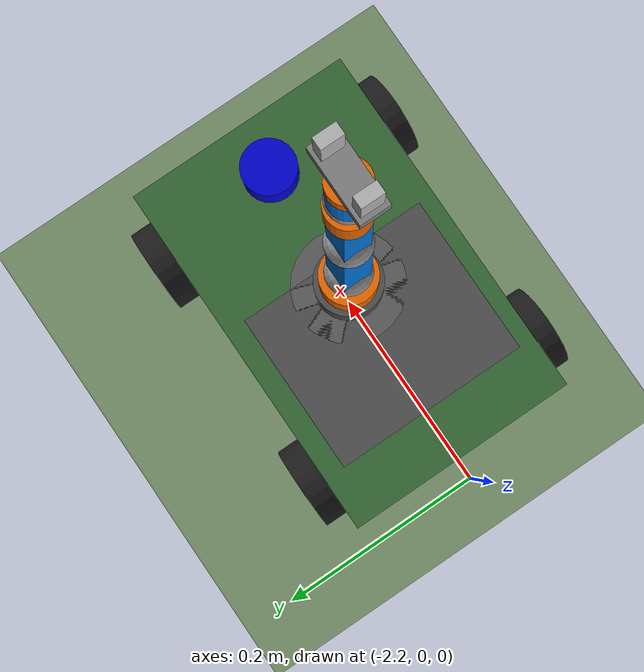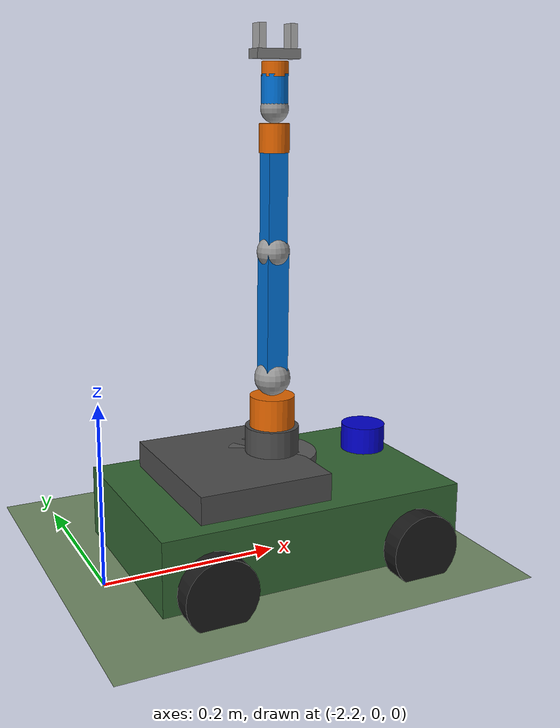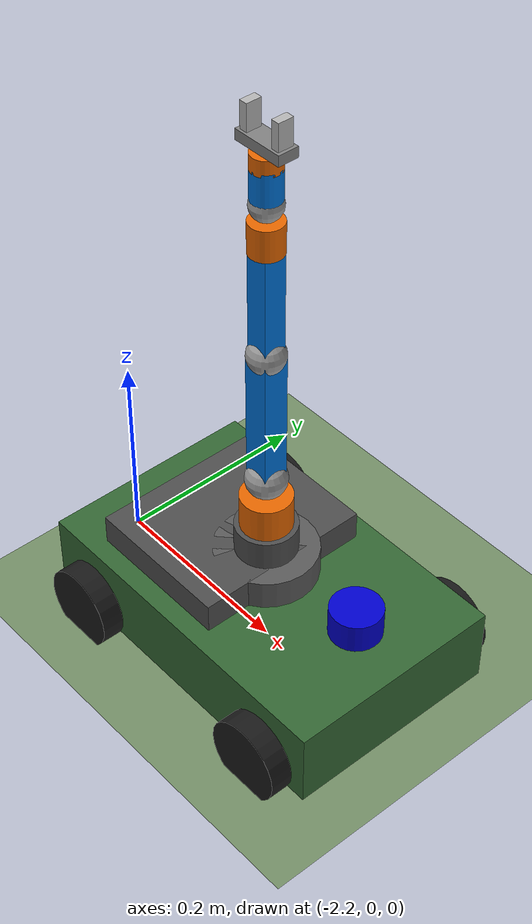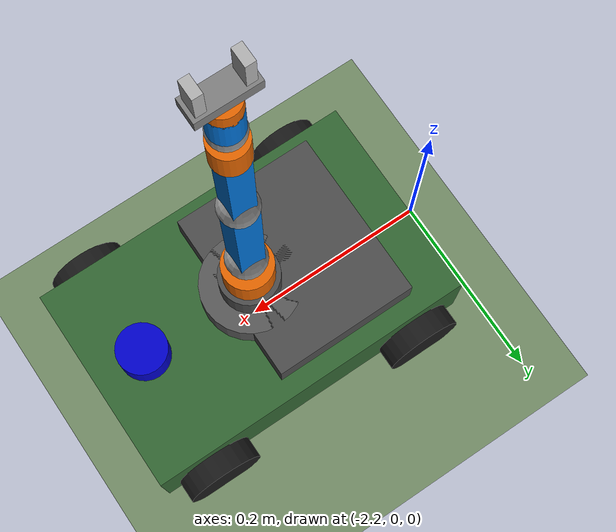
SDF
<sdf version="1.8">
 <world name="lmm_world">
  <model name="ground_plane">
   <static>true</static>
   <link name="link">
    <collision name="collision"><geometry><plane><normal>0 0 1</normal></plane></geometry></collision>
    <visual name="visual">
     <geometry><plane><normal>0 0 1</normal><size>100 100</size></plane></geometry>
     <material><ambient>0.4 0.5 0.35 1</ambient><diffuse>0.45 0.55 0.4 1</diffuse></material>
    </visual>
   </link>
  </model>
  <model name="ika_with_arm">
   <pose>-2 0 0.05 0 0 0</pose>
   <link name="base_link">
    <inertial>
     <mass>5.0</mass>
     <inertia><ixx>0.008</ixx><ixy>0</ixy><ixz>0</ixz><iyy>0.012</iyy><iyz>0</iyz><izz>0.008</izz></inertia>
    </inertial>
    <visual name="body">
     <geometry><box><size>0.35 0.22 0.08</size></box></geometry>
     <material><ambient>0.15 0.3 0.15 1</ambient><diffuse>0.2 0.4 0.2 1</diffuse></material>
    </visual>
    <collision name="body"><geometry><box><size>0.35 0.22 0.08</size></box></geometry></collision>
    <visual name="top">
     <pose>-0.05 0 0.055 0 0 0</pose>
     <geometry><box><size>0.15 0.18 0.03</size></box></geometry>
     <material><ambient>0.2 0.2 0.2 1</ambient><diffuse>0.3 0.3 0.3 1</diffuse></material>
    </visual>
    <visual name="lidar_visual">
     <pose>0.12 0 0.07 0 0 0</pose>
     <geometry><cylinder><radius>0.025</radius><length>0.03</length></cylinder></geometry>
     <material><ambient>0 0 0.6 1</ambient><diffuse>0 0 0.8 1</diffuse></material>
    </visual>
    <visual name="camera_visual">
     <pose>0.16 0 0.02 0 0 0</pose>
     <geometry><box><size>0.02 0.04 0.02</size></box></geometry>
     <material><ambient>0.1 0.1 0.1 1</ambient></material>
    </visual>
    <visual name="arm_platform">
     <pose>0 0 0.055 0 0 0</pose>
     <geometry><cylinder><radius>0.05</radius><length>0.03</length></cylinder></geometry>
     <material><ambient>0.3 0.3 0.3 1</ambient><diffuse>0.35 0.35 0.35 1</diffuse></material>
    </visual>
    <sensor name="ika_camera" type="camera">
     <pose>0.16 0 0.02 0 0 0</pose>
     <always_on>1</always_on>
     <update_rate>15</update_rate>
     <camera>
      <horizontal_fov>1.39</horizontal_fov>
      <image><width>320</width><height>240</height></image>
      <clip><near>0.1</near><far>50</far></clip>
     </camera>
     <topic>ika/camera</topic>
    </sensor>
    <sensor name="ika_lidar" type="gpu_lidar">
     <pose>0.12 0 0.07 0 0 0</pose>
     <always_on>1</always_on>
     <update_rate>10</update_rate>
     <lidar>
      <scan>
       <horizontal>
        <samples>360</samples>
        <resolution>1</resolution>
        <min_angle>-3.14159</min_angle>
        <max_angle>3.14159</max_angle>
       </horizontal>
      </scan>
      <range><min>0.5</min><max>12.0</max></range>
     </lidar>
     <topic>ika/lidar</topic>
    </sensor>
    <sensor name="ika_imu" type="imu">
     <always_on>1</always_on>
     <update_rate>50</update_rate>
     <topic>ika/imu</topic>
    </sensor>
   </link>
   <link name="wheel_fl">
    <pose relative_to="base_link">0.12 0.12 -0.02 -1.5708 0 0</pose>
    <inertial>
     <mass>0.1</mass>
     <inertia><ixx>0.0001</ixx><ixy>0</ixy><ixz>0</ixz><iyy>0.0001</iyy><iyz>0</iyz><izz>0.0001</izz></inertia>
    </inertial>
    <visual name="v">
     <geometry><cylinder><radius>0.04</radius><length>0.025</length></cylinder></geometry>
     <material><ambient>0.05 0.05 0.05 1</ambient><diffuse>0.1 0.1 0.1 1</diffuse></material>
    </visual>
    <collision name="c">
     <geometry><cylinder><radius>0.04</radius><length>0.025</length></cylinder></geometry>
     <surface><friction><ode><mu>2.0</mu><mu2>2.0</mu2></ode></friction></surface>
    </collision>
   </link>
   <joint name="wfl_joint" type="revolute">
    <parent>base_link</parent>
    <child>wheel_fl</child>
    <axis><xyz>0 0 1</xyz></axis>
   </joint>
   <link name="wheel_fr">
    <pose relative_to="base_link">0.12 -0.12 -0.02 -1.5708 0 0</pose>
    <inertial>
     <mass>0.1</mass>
     <inertia><ixx>0.0001</ixx><ixy>0</ixy><ixz>0</ixz><iyy>0.0001</iyy><iyz>0</iyz><izz>0.0001</izz></inertia>
    </inertial>
    <visual name="v">
     <geometry><cylinder><radius>0.04</radius><length>0.025</length></cylinder></geometry>
     <material><ambient>0.05 0.05 0.05 1</ambient><diffuse>0.1 0.1 0.1 1</diffuse></material>
    </visual>
    <collision name="c">
     <geometry><cylinder><radius>0.04</radius><length>0.025</length></cylinder></geometry>
     <surface><friction><ode><mu>2.0</mu><mu2>2.0</mu2></ode></friction></surface>
    </collision>
   </link>
   <joint name="wfr_joint" type="revolute">
    <parent>base_link</parent>
    <child>wheel_fr</child>
    <axis><xyz>0 0 1</xyz></axis>
   </joint>
   <link name="wheel_rl">
    <pose relative_to="base_link">-0.12 0.12 -0.02 -1.5708 0 0</pose>
    <inertial>
     <mass>0.1</mass>
     <inertia><ixx>0.0001</ixx><ixy>0</ixy><ixz>0</ixz><iyy>0.0001</iyy><iyz>0</iyz><izz>0.0001</izz></inertia>
    </inertial>
    <visual name="v">
     <geometry><cylinder><radius>0.04</radius><length>0.025</length></cylinder></geometry>
     <material><ambient>0.05 0.05 0.05 1</ambient><diffuse>0.1 0.1 0.1 1</diffuse></material>
    </visual>
    <collision name="c">
     <geometry><cylinder><radius>0.04</radius><length>0.025</length></cylinder></geometry>
     <surface><friction><ode><mu>2.0</mu><mu2>2.0</mu2></ode></friction></surface>
    </collision>
   </link>
   <joint name="wrl_joint" type="revolute">
    <parent>base_link</parent>
    <child>wheel_rl</child>
    <axis><xyz>0 0 1</xyz></axis>
   </joint>
   <link name="wheel_rr">
    <pose relative_to="base_link">-0.12 -0.12 -0.02 -1.5708 0 0</pose>
    <inertial>
     <mass>0.1</mass>
     <inertia><ixx>0.0001</ixx><ixy>0</ixy><ixz>0</ixz><iyy>0.0001</iyy><iyz>0</iyz><izz>0.0001</izz></inertia>
    </inertial>
    <visual name="v">
     <geometry><cylinder><radius>0.04</radius><length>0.025</length></cylinder></geometry>
     <material><ambient>0.05 0.05 0.05 1</ambient><diffuse>0.1 0.1 0.1 1</diffuse></material>
    </visual>
    <collision name="c">
     <geometry><cylinder><radius>0.04</radius><length>0.025</length></cylinder></geometry>
     <surface><friction><ode><mu>2.0</mu><mu2>2.0</mu2></ode></friction></surface>
    </collision>
   </link>
   <joint name="wrr_joint" type="revolute">
    <parent>base_link</parent>
    <child>wheel_rr</child>
    <axis><xyz>0 0 1</xyz></axis>
   </joint>
   <link name="arm_base">
    <pose relative_to="base_link">0 0 0.085 0 0 0</pose>
    <inertial>
     <mass>0.4</mass>
     <inertia><ixx>0.001</ixx><ixy>0</ixy><ixz>0</ixz><iyy>0.001</iyy><iyz>0</iyz><izz>0.001</izz></inertia>
    </inertial>
    <visual name="v">
     <geometry><cylinder><radius>0.03</radius><length>0.03</length></cylinder></geometry>
     <material><ambient>0.25 0.25 0.25 1</ambient><diffuse>0.3 0.3 0.3 1</diffuse></material>
    </visual>
   </link>
   <joint name="arm_base_fix" type="fixed"><parent>base_link</parent><child>arm_base</child></joint>
   <link name="arm_link1">
    <pose relative_to="arm_base">0 0 0.03 0 0 0</pose>
    <inertial>
     <mass>0.3</mass>
     <inertia><ixx>0.0005</ixx><ixy>0</ixy><ixz>0</ixz><iyy>0.0005</iyy><iyz>0</iyz><izz>0.0005</izz></inertia>
    </inertial>
    <visual name="v">
     <geometry><cylinder><radius>0.025</radius><length>0.04</length></cylinder></geometry>
     <material><ambient>0.7 0.3 0.0 1</ambient><diffuse>0.9 0.4 0.0 1</diffuse></material>
    </visual>
   </link>
   <joint name="arm_j1" type="revolute">
    <parent>arm_base</parent>
    <child>arm_link1</child>
    <axis>
     <xyz>0 0 1</xyz>
     <limit><lower>-3.14</lower><upper>3.14</upper><effort>30</effort></limit>
     <dynamics><damping>2.0</damping></dynamics>
    </axis>
   </joint>
   <link name="arm_link2">
    <pose relative_to="arm_link1">0 0 0.04 0 0 0</pose>
    <inertial>
     <mass>0.25</mass>
     <inertia><ixx>0.001</ixx><ixy>0</ixy><ixz>0</ixz><iyy>0.001</iyy><iyz>0</iyz><izz>0.0003</izz></inertia>
    </inertial>
    <visual name="joint_cap">
     <geometry><sphere><radius>0.02</radius></sphere></geometry>
     <material><ambient>0.5 0.5 0.5 1</ambient><diffuse>0.6 0.6 0.6 1</diffuse></material>
    </visual>
    <visual name="upper_arm">
     <pose>0 0 0.07 0 0 0</pose>
     <geometry><box><size>0.025 0.025 0.14</size></box></geometry>
     <material><ambient>0.0 0.35 0.7 1</ambient><diffuse>0.0 0.45 0.85 1</diffuse></material>
    </visual>
   </link>
   <joint name="arm_j2" type="revolute">
    <parent>arm_link1</parent>
    <child>arm_link2</child>
    <axis>
     <xyz>0 1 0</xyz>
     <limit><lower>-1.57</lower><upper>1.57</upper><effort>30</effort></limit>
     <dynamics><damping>2.0</damping></dynamics>
    </axis>
   </joint>
   <link name="arm_link3">
    <pose relative_to="arm_link2">0 0 0.14 0 0 0</pose>
    <inertial>
     <mass>0.2</mass>
     <inertia><ixx>0.0008</ixx><ixy>0</ixy><ixz>0</ixz><iyy>0.0008</iyy><iyz>0</iyz><izz>0.0002</izz></inertia>
    </inertial>
    <visual name="joint_cap">
     <geometry><sphere><radius>0.018</radius></sphere></geometry>
     <material><ambient>0.5 0.5 0.5 1</ambient><diffuse>0.6 0.6 0.6 1</diffuse></material>
    </visual>
    <visual name="forearm">
     <pose>0 0 0.06 0 0 0</pose>
     <geometry><box><size>0.022 0.022 0.12</size></box></geometry>
     <material><ambient>0.0 0.35 0.7 1</ambient><diffuse>0.0 0.45 0.85 1</diffuse></material>
    </visual>
   </link>
   <joint name="arm_j3" type="revolute">
    <parent>arm_link2</parent>
    <child>arm_link3</child>
    <axis>
     <xyz>0 1 0</xyz>
     <limit><lower>-2.35</lower><upper>2.35</upper><effort>20</effort></limit>
     <dynamics><damping>1.5</damping></dynamics>
    </axis>
   </joint>
   <link name="arm_link4">
    <pose relative_to="arm_link3">0 0 0.12 0 0 0</pose>
    <inertial>
     <mass>0.15</mass>
     <inertia><ixx>0.0003</ixx><ixy>0</ixy><ixz>0</ixz><iyy>0.0003</iyy><iyz>0</iyz><izz>0.0002</izz></inertia>
    </inertial>
    <visual name="v">
     <geometry><cylinder><radius>0.016</radius><length>0.03</length></cylinder></geometry>
     <material><ambient>0.7 0.3 0.0 1</ambient><diffuse>0.9 0.4 0.0 1</diffuse></material>
    </visual>
   </link>
   <joint name="arm_j4" type="revolute">
    <parent>arm_link3</parent>
    <child>arm_link4</child>
    <axis>
     <xyz>0 0 1</xyz>
     <limit><lower>-3.14</lower><upper>3.14</upper><effort>15</effort></limit>
     <dynamics><damping>1.0</damping></dynamics>
    </axis>
   </joint>
   <link name="arm_link5">
    <pose relative_to="arm_link4">0 0 0.03 0 0 0</pose>
    <inertial>
     <mass>0.1</mass>
     <inertia><ixx>0.0002</ixx><ixy>0</ixy><ixz>0</ixz><iyy>0.0002</iyy><iyz>0</iyz><izz>0.0001</izz></inertia>
    </inertial>
    <visual name="joint_cap">
     <geometry><sphere><radius>0.015</radius></sphere></geometry>
     <material><ambient>0.5 0.5 0.5 1</ambient><diffuse>0.6 0.6 0.6 1</diffuse></material>
    </visual>
    <visual name="wrist">
     <pose>0 0 0.02 0 0 0</pose>
     <geometry><cylinder><radius>0.014</radius><length>0.03</length></cylinder></geometry>
     <material><ambient>0.0 0.35 0.7 1</ambient><diffuse>0.0 0.45 0.85 1</diffuse></material>
    </visual>
    <sensor name="arm_camera" type="camera">
     <pose>0 0 0.01 0 1.57 0</pose>
     <always_on>1</always_on>
     <update_rate>15</update_rate>
     <camera>
      <horizontal_fov>1.2</horizontal_fov>
      <image><width>320</width><height>240</height></image>
      <clip><near>0.01</near><far>5</far></clip>
     </camera>
     <topic>arm/camera</topic>
    </sensor>
   </link>
   <joint name="arm_j5" type="revolute">
    <parent>arm_link4</parent>
    <child>arm_link5</child>
    <axis>
     <xyz>0 1 0</xyz>
     <limit><lower>-2.0</lower><upper>2.0</upper><effort>10</effort></limit>
     <dynamics><damping>1.0</damping></dynamics>
    </axis>
   </joint>
   <link name="arm_link6">
    <pose relative_to="arm_link5">0 0 0.04 0 0 0</pose>
    <inertial>
     <mass>0.08</mass>
     <inertia><ixx>0.0001</ixx><ixy>0</ixy><ixz>0</ixz><iyy>0.0001</iyy><iyz>0</iyz><izz>0.0001</izz></inertia>
    </inertial>
    <visual name="v">
     <geometry><cylinder><radius>0.014</radius><length>0.015</length></cylinder></geometry>
     <material><ambient>0.7 0.3 0.0 1</ambient><diffuse>0.9 0.4 0.0 1</diffuse></material>
    </visual>
   </link>
   <joint name="arm_j6" type="revolute">
    <parent>arm_link5</parent>
    <child>arm_link6</child>
    <axis>
     <xyz>0 0 1</xyz>
     <limit><lower>-3.14</lower><upper>3.14</upper><effort>8</effort></limit>
     <dynamics><damping>0.8</damping></dynamics>
    </axis>
   </joint>
   <link name="gripper_base">
    <pose relative_to="arm_link6">0 0 0.015 0 0 0</pose>
    <inertial>
     <mass>0.05</mass>
     <inertia><ixx>0.00003</ixx><ixy>0</ixy><ixz>0</ixz><iyy>0.00003</iyy><iyz>0</iyz><izz>0.00003</izz></inertia>
    </inertial>
    <visual name="v">
     <geometry><box><size>0.05 0.02 0.01</size></box></geometry>
     <material><ambient>0.4 0.4 0.4 1</ambient><diffuse>0.5 0.5 0.5 1</diffuse></material>
    </visual>
   </link>
   <joint name="gripper_base_joint" type="fixed"><parent>arm_link6</parent><child>gripper_base</child></joint>
   <link name="finger_left">
    <pose relative_to="gripper_base">-0.018 0 0.015 0 0 0</pose>
    <inertial>
     <mass>0.015</mass>
     <inertia>
      <ixx>0.000003</ixx>
      <ixy>0</ixy>
      <ixz>0</ixz>
      <iyy>0.000003</iyy>
      <iyz>0</iyz>
      <izz>0.000003</izz>
     </inertia>
    </inertial>
    <visual name="v">
     <geometry><box><size>0.008 0.015 0.03</size></box></geometry>
     <material><ambient>0.6 0.6 0.6 1</ambient><diffuse>0.7 0.7 0.7 1</diffuse></material>
    </visual>
    <collision name="c"><geometry><box><size>0.008 0.015 0.03</size></box></geometry></collision>
   </link>
   <joint name="finger_left_joint" type="prismatic">
    <parent>gripper_base</parent>
    <child>finger_left</child>
    <axis>
     <xyz>1 0 0</xyz>
     <limit><lower>-0.02</lower><upper>0.0</upper><effort>8</effort></limit>
     <dynamics><damping>0.1</damping></dynamics>
    </axis>
   </joint>
   <link name="finger_right">
    <pose relative_to="gripper_base">0.018 0 0.015 0 0 0</pose>
    <inertial>
     <mass>0.015</mass>
     <inertia>
      <ixx>0.000003</ixx>
      <ixy>0</ixy>
      <ixz>0</ixz>
      <iyy>0.000003</iyy>
      <iyz>0</iyz>
      <izz>0.000003</izz>
     </inertia>
    </inertial>
    <visual name="v">
     <geometry><box><size>0.008 0.015 0.03</size></box></geometry>
     <material><ambient>0.6 0.6 0.6 1</ambient><diffuse>0.7 0.7 0.7 1</diffuse></material>
    </visual>
    <collision name="c"><geometry><box><size>0.008 0.015 0.03</size></box></geometry></collision>
   </link>
   <joint name="finger_right_joint" type="prismatic">
    <parent>gripper_base</parent>
    <child>finger_right</child>
    <axis>
     <xyz>1 0 0</xyz>
     <limit><lower>0.0</lower><upper>0.02</upper><effort>8</effort></limit>
     <dynamics><damping>0.1</damping></dynamics>
    </axis>
   </joint>
   <plugin filename="libignition-gazebo6-diff-drive-system.so" name="ignition::gazebo::systems::DiffDrive">
    <left_joint>wfl_joint</left_joint>
    <left_joint>wrl_joint</left_joint>
    <right_joint>wfr_joint</right_joint>
    <right_joint>wrr_joint</right_joint>
    <wheel_separation>0.24</wheel_separation>
    <wheel_radius>0.04</wheel_radius>
    <topic>ugv_cmd_vel</topic>
    <odom_topic>ugv_odom</odom_topic>
    <odom_publish_frequency>30</odom_publish_frequency>
   </plugin>
   <plugin filename="libignition-gazebo6-odometry-publisher-system.so" name="ignition::gazebo::systems::OdometryPublisher">
    <odom_topic>ika/odom</odom_topic>
    <odom_frame>odom</odom_frame>
    <robot_base_frame>base_link</robot_base_frame>
    <odom_publish_frequency>30</odom_publish_frequency>
   </plugin>
   <plugin filename="libignition-gazebo6-joint-position-controller-system.so" name="ignition::gazebo::systems::JointPositionController">
    <joint_name>arm_j1</joint_name>
    <topic>arm_j1</topic>
    <p_gain>8</p_gain>
    <i_gain>0.05</i_gain>
    <d_gain>4.0</d_gain>
   </plugin>
   <plugin filename="libignition-gazebo6-joint-position-controller-system.so" name="ignition::gazebo::systems::JointPositionController">
    <joint_name>arm_j2</joint_name>
    <topic>arm_j2</topic>
    <p_gain>8</p_gain>
    <i_gain>0.05</i_gain>
    <d_gain>4.0</d_gain>
   </plugin>
   <plugin filename="libignition-gazebo6-joint-position-controller-system.so" name="ignition::gazebo::systems::JointPositionController">
    <joint_name>arm_j3</joint_name>
    <topic>arm_j3</topic>
    <p_gain>6</p_gain>
    <i_gain>0.05</i_gain>
    <d_gain>3.0</d_gain>
   </plugin>
   <plugin filename="libignition-gazebo6-joint-position-controller-system.so" name="ignition::gazebo::systems::JointPositionController">
    <joint_name>arm_j4</joint_name>
    <topic>arm_j4</topic>
    <p_gain>5</p_gain>
    <i_gain>0.05</i_gain>
    <d_gain>2.0</d_gain>
   </plugin>
   <plugin filename="libignition-gazebo6-joint-position-controller-system.so" name="ignition::gazebo::systems::JointPositionController">
    <joint_name>arm_j5</joint_name>
    <topic>arm_j5</topic>
    <p_gain>4</p_gain>
    <i_gain>0.05</i_gain>
    <d_gain>1.5</d_gain>
   </plugin>
   <plugin filename="libignition-gazebo6-joint-position-controller-system.so" name="ignition::gazebo::systems::JointPositionController">
    <joint_name>arm_j6</joint_name>
    <topic>arm_j6</topic>
    <p_gain>3</p_gain>
    <i_gain>0.05</i_gain>
    <d_gain>1.0</d_gain>
   </plugin>
   <plugin filename="libignition-gazebo6-joint-position-controller-system.so" name="ignition::gazebo::systems::JointPositionController">
    <joint_name>finger_left_joint</joint_name>
    <topic>gripper_left</topic>
    <p_gain>20</p_gain>
    <i_gain>0.1</i_gain>
    <d_gain>0.5</d_gain>
   </plugin>
   <plugin filename="libignition-gazebo6-joint-position-controller-system.so" name="ignition::gazebo::systems::JointPositionController">
    <joint_name>finger_right_joint</joint_name>
    <topic>gripper_right</topic>
    <p_gain>20</p_gain>
    <i_gain>0.1</i_gain>
    <d_gain>0.5</d_gain>
   </plugin>
   <plugin filename="ignition-gazebo-detachable-joint-system" name="ignition::gazebo::systems::DetachableJoint">
    <parent_link>gripper_base</parent_link>
    <child_model>red_circle</child_model>
    <child_link>link</child_link>
    <detach_topic>/red_circle/detach</detach_topic>
    <attach_topic>/red_circle/attach</attach_topic>
    <output_topic>/red_circle/state</output_topic>
   </plugin>
   <plugin filename="ignition-gazebo-detachable-joint-system" name="ignition::gazebo::systems::DetachableJoint">
    <parent_link>gripper_base</parent_link>
    <child_model>red_square</child_model>
    <child_link>link</child_link>
    <detach_topic>/red_square/detach</detach_topic>
    <attach_topic>/red_square/attach</attach_topic>
    <output_topic>/red_square/state</output_topic>
   </plugin>
   <plugin filename="ignition-gazebo-detachable-joint-system" name="ignition::gazebo::systems::DetachableJoint">
    <parent_link>gripper_base</parent_link>
    <child_model>red_triangle</child_model>
    <child_link>link</child_link>
    <detach_topic>/red_triangle/detach</detach_topic>
    <attach_topic>/red_triangle/attach</attach_topic>
    <output_topic>/red_triangle/state</output_topic>
   </plugin>
   <plugin filename="libignition-gazebo6-joint-state-publisher-system.so" name="ignition::gazebo::systems::JointStatePublisher">
    <topic>arm/joint_states</topic>
   </plugin>
  </model>
 </world>
</sdf>
